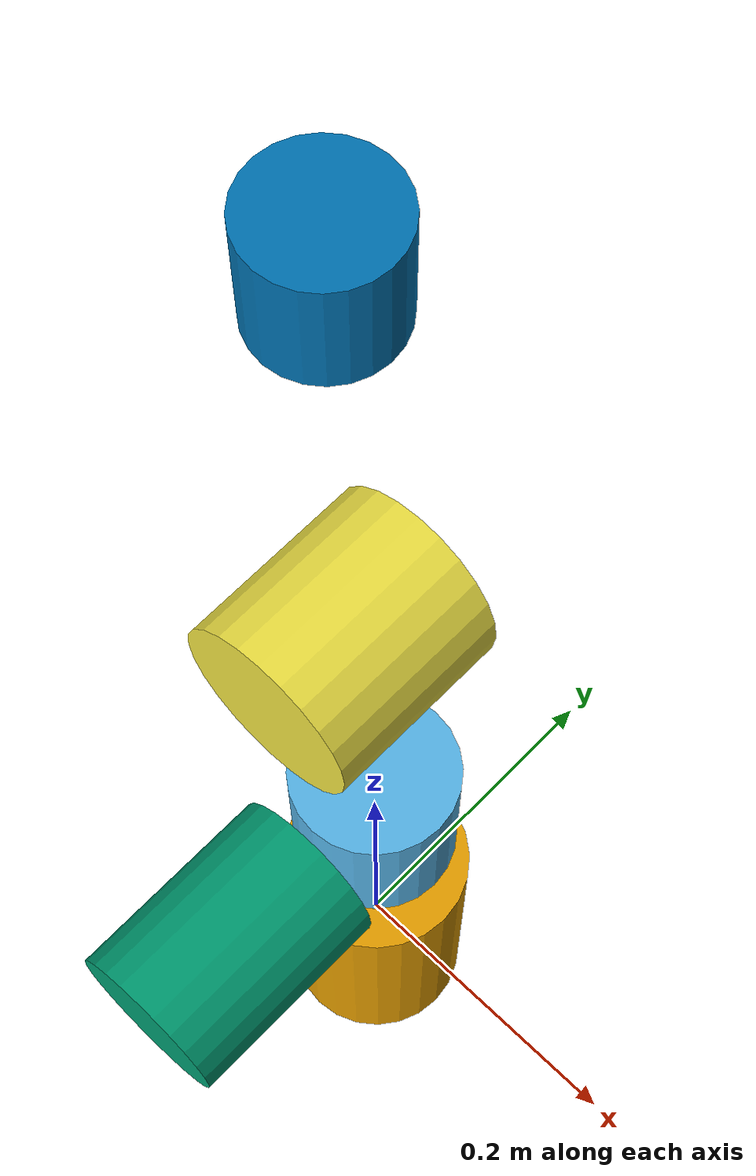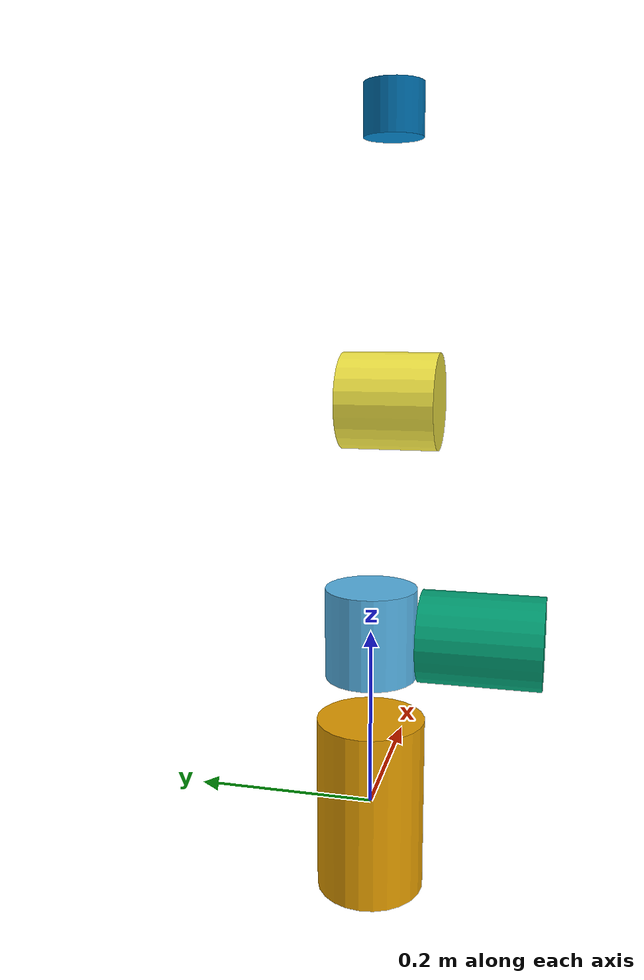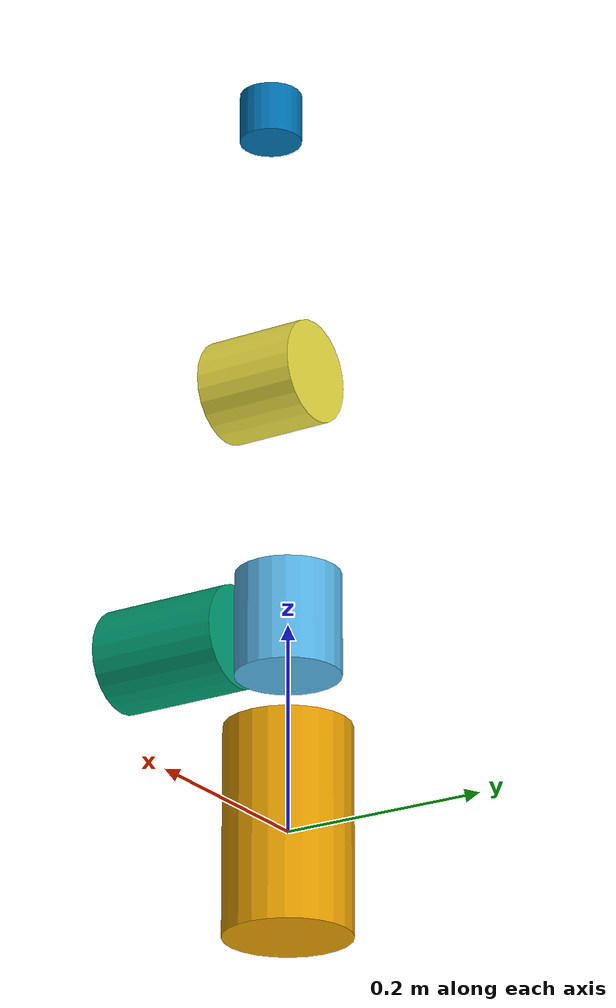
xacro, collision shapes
<?xml version="1.0"?>
<robot xmlns:xacro="http://www.ros.org/wiki/xacro" name="example">

  <!-- Link 0 (Base link) -->
  <link name="link_0">
    <visual>
      <geometry>
        <mesh filename="file:///$(find example_description)/meshes/link_0.stl"/>
      </geometry>
    </visual>
    <collision>
      <geometry>
        <cylinder radius="0.06" length="0.2"/> <!-- Base link with radius 60mm, height 200mm -->
      </geometry>
    </collision>
  </link>

  <!-- Link 1 -->
  <link name="link_1">
    <visual>
      <geometry>
        <mesh filename="file:///$(find example_description)/meshes/link_1.stl"/>
      </geometry>
    </visual>
    <collision>
      <geometry>
        <cylinder radius="0.05" length="0.1"/> <!-- Link 1 with radius 50mm, length 100mm -->
      </geometry>
    </collision>
  </link>

  <!-- Joint 1 -->
  <joint name="joint_1" type="revolute">
    <parent link="link_0"/>
    <child link="link_1"/>
    <origin xyz="0 0 0.2" rpy="0 0 0"/>
    <axis xyz="0 0 1"/>
    <limit
      lower="-3.1459"
      upper="3.1459"
      velocity="1000.0"
      effort="1000.0"/>
  </joint>

  <!-- Link 2 -->
  <link name="link_2">
    <visual>
      <origin xyz="0.0 0.0 0.0" rpy="0 0 ${-3.14/2}"/>
      <geometry>
        <mesh filename="file:///$(find example_description)/meshes/link_2.stl"/>
      </geometry>
    </visual>
    <collision>
      <origin xyz="0.0 0.0 0.0" rpy="0 0 ${-3.14/2}"/>
      <geometry>
        <cylinder radius="0.05" length="0.13"/> <!-- Link 2 with radius 50mm, length 130mm -->
      </geometry>
    </collision>
  </link>

  <!-- Joint 2 -->
  <joint name="joint_2" type="revolute">
    <parent link="link_1"/>
    <child link="link_2"/>
    <origin xyz="0.0 -0.12 0.0" rpy="${-3.14/2} 0 0"/>
    <axis xyz="0 0 1"/>
    <limit
      lower="-3.1459"
      upper="3.1459"
      velocity="1000.0"
      effort="1000.0"/>
  </joint>

  <!-- Link 3 -->
  <link name="link_3">
    <visual>
      <origin xyz="0.0 0.0 0.0" rpy="0 0 ${-3.14/2}"/>
      <geometry>
        <mesh filename="file:///$(find example_description)/meshes/link_3.stl"/>
      </geometry>
    </visual>
    <collision>
      <origin xyz="0.0 0.0 0.0" rpy="0 0 ${-3.14/2}"/>
      <geometry>
        <cylinder radius="0.05" length="0.1"/> <!-- Link 3 with radius 50mm, length 100mm -->
      </geometry>
    </collision>
  </link>

  <!-- Joint 3 -->
  <joint name="joint_3" type="revolute">
    <parent link="link_2"/>
    <child link="link_3"/>
    <origin xyz="0.0 -0.25 0.1" rpy="0 0 0"/>
    <axis xyz="0 0 1"/>
    <limit
      lower="-3.1459"
      upper="3.1459"
      velocity="1000.0"
      effort="1000.0"/>
  </joint>

  <!-- End Effector -->
  <link name="end_effector">
    <visual>
      <origin xyz="0.0 0.0 0.0" rpy="0 0 0"/>
      <geometry>
        <mesh filename="file:///$(find example_description)/meshes/end_effector.stl"/>
      </geometry>
    </visual>
    <collision>
      <origin xyz="0.0 0.0 0.0" rpy="0 0 0"/>
      <geometry>
        <cylinder radius="0.03" length="0.05"/> <!-- End effector: Adjust as needed -->
      </geometry>
    </collision>
  </link>

  <!-- Joint End Effector -->
  <joint name="joint_end_effector" type="fixed">
    <parent link="link_3"/>
    <child link="end_effector"/>
    <origin xyz="0.0 -0.28 0.0" rpy="${3.14/2} 0 0"/>
  </joint>

</robot>
